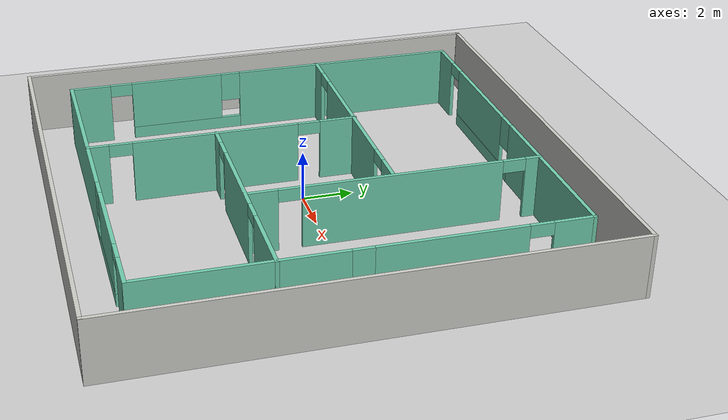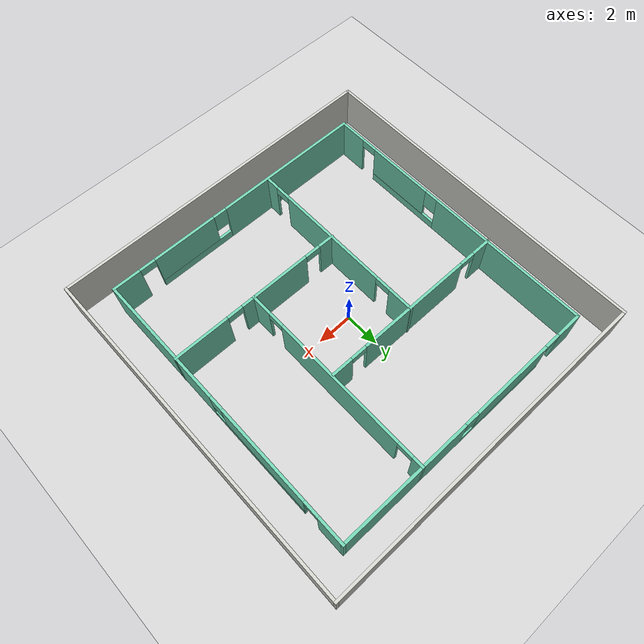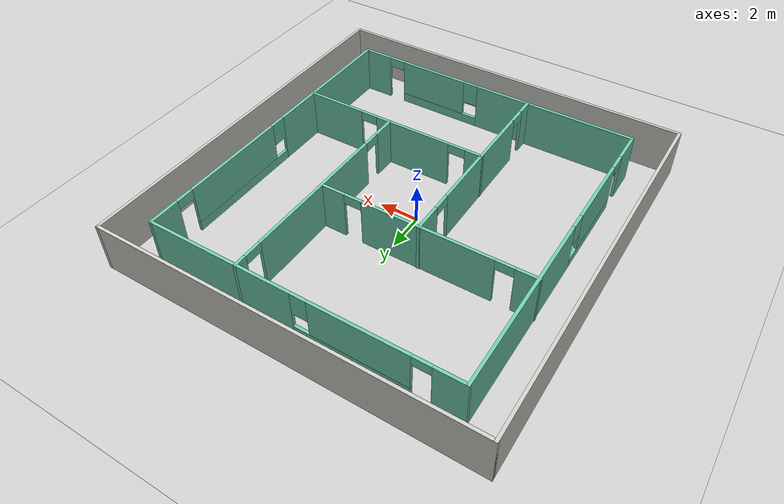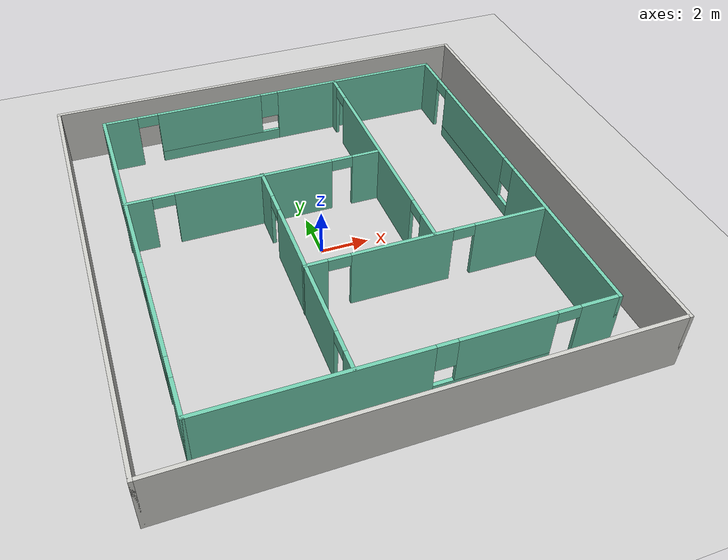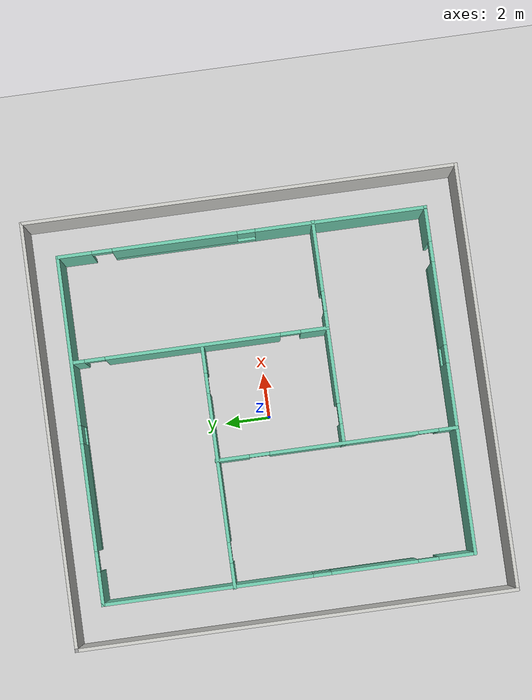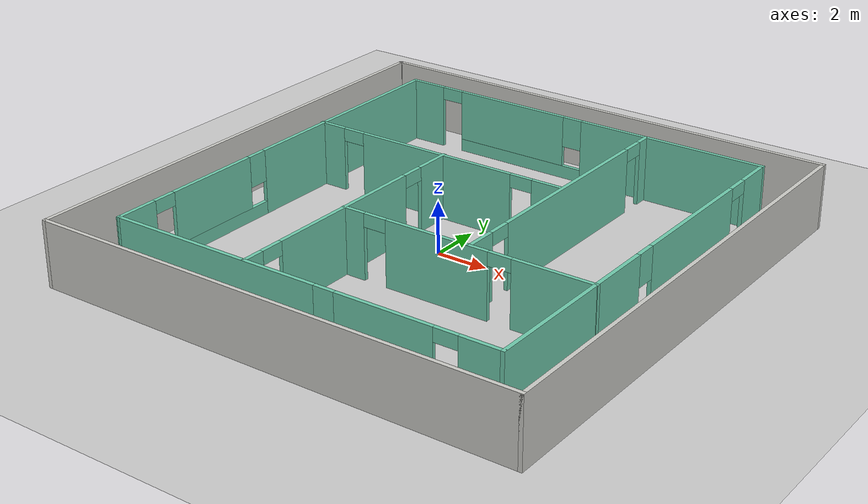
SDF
<sdf version="1.6">
 <world name="default">
  <plugin name="hello" filename="./build/libhello.so"/>
  <light name="sun" type="directional">
   <pose>0 0 10 0 -0 0</pose>
   <diffuse>0.8 0.8 0.8 1</diffuse>
   <specular>0.2 0.2 0.2 1</specular>
   <attenuation>
    <range>1000</range>
    <constant>0.9</constant>
    <linear>0.01</linear>
    <quadratic>0.001</quadratic>
   </attenuation>
   <direction>-0.5 0.1 -0.9</direction>
  </light>
  <model name="ground_plane">
   <static>1</static>
   <link name="link">
    <collision name="collision">
     <geometry><plane><normal>0 0 1</normal><size>100 100</size></plane></geometry>
     <surface>
      <contact><collide_bitmask>65535</collide_bitmask></contact>
      <friction><ode><mu>100</mu><mu2>50</mu2></ode></friction>
     </surface>
    </collision>
    <visual name="visual">
     <cast_shadows>0</cast_shadows>
     <geometry><plane><normal>0 0 1</normal><size>100 100</size></plane></geometry>
     <material>
      <script><uri>file://media/materials/scripts/gazebo.material</uri><name>Gazebo/Grey</name></script>
     </material>
    </visual>
   </link>
  </model>
  <gravity>0 0 -9.8</gravity>
  <magnetic_field>6e-06 2.3e-05 -4.2e-05</magnetic_field>
  <atmosphere type="adiabatic"/>
  <physics name="default_physics" default="0" type="ode">
   <max_step_size>0.001</max_step_size>
   <real_time_factor>1</real_time_factor>
   <real_time_update_rate>1000</real_time_update_rate>
  </physics>
  <scene><ambient>0.4 0.4 0.4 1</ambient><background>0.7 0.7 0.7 1</background><shadows>1</shadows></scene>
  <audio><device>default</device></audio>
  <spherical_coordinates>
   <surface_model>EARTH_WGS84</surface_model>
   <latitude_deg>0</latitude_deg>
   <longitude_deg>0</longitude_deg>
   <elevation>0</elevation>
   <heading_deg>0</heading_deg>
  </spherical_coordinates>
  <model name="Building">
   <pose>0.43599 0.01676 0 0 -0 0</pose>
   <link name="Wall_101">
    <pose>-2.08663 -2.75527 0 0 -0 -1.5708</pose>
    <visual name="Wall_101_Visual_0">
     <pose>-4.61745 0 1.25 0 -0 0</pose>
     <geometry><box><size>1.51509 0.15 2.5</size></box></geometry>
     <material>
      <script><uri>file://media/materials/scripts/gazebo.material</uri><name>Gazebo/Grey</name></script>
      <ambient>0.435294 0.796078 0.67451 1</ambient>
     </material>
     <meta><layer>0</layer></meta>
    </visual>
    <collision name="Wall_101_Collision_0">
     <geometry><box><size>1.51509 0.15 2.5</size></box></geometry>
     <pose>-4.61745 0 1.25 0 -0 0</pose>
    </collision>
    <visual name="Wall_101_Visual_1">
     <pose>0.323003 0 1.25 0 -0 0</pose>
     <geometry><box><size>6.56583 0.15 2.5</size></box></geometry>
     <material>
      <script><uri>file://media/materials/scripts/gazebo.material</uri><name>Gazebo/Grey</name></script>
      <ambient>0.435294 0.796078 0.67451 1</ambient>
     </material>
     <meta><layer>0</layer></meta>
    </visual>
    <collision name="Wall_101_Collision_1">
     <geometry><box><size>6.56583 0.15 2.5</size></box></geometry>
     <pose>0.323003 0 1.25 0 -0 0</pose>
    </collision>
    <visual name="Wall_101_Visual_2">
     <pose>4.94046 0 1.25 0 -0 0</pose>
     <geometry><box><size>0.869084 0.15 2.5</size></box></geometry>
     <material>
      <script><uri>file://media/materials/scripts/gazebo.material</uri><name>Gazebo/Grey</name></script>
      <ambient>0.435294 0.796078 0.67451 1</ambient>
     </material>
     <meta><layer>0</layer></meta>
    </visual>
    <collision name="Wall_101_Collision_2">
     <geometry><box><size>0.869084 0.15 2.5</size></box></geometry>
     <pose>4.94046 0 1.25 0 -0 0</pose>
    </collision>
    <visual name="Wall_101_Visual_3">
     <pose>-3.40991 0 2.25 0 -0 0</pose>
     <geometry><box><size>0.9 0.15 0.5</size></box></geometry>
     <material>
      <script><uri>file://media/materials/scripts/gazebo.material</uri><name>Gazebo/Grey</name></script>
      <ambient>0.435294 0.796078 0.67451 1</ambient>
     </material>
     <meta><layer>0</layer></meta>
    </visual>
    <collision name="Wall_101_Collision_3">
     <geometry><box><size>0.9 0.15 0.5</size></box></geometry>
     <pose>-3.40991 0 2.25 0 -0 0</pose>
    </collision>
    <visual name="Wall_101_Visual_4">
     <pose>4.05592 0 2.25 0 -0 0</pose>
     <geometry><box><size>0.9 0.15 0.5</size></box></geometry>
     <material>
      <script><uri>file://media/materials/scripts/gazebo.material</uri><name>Gazebo/Grey</name></script>
      <ambient>0.435294 0.796078 0.67451 1</ambient>
     </material>
     <meta><layer>0</layer></meta>
    </visual>
    <collision name="Wall_101_Collision_4">
     <geometry><box><size>0.9 0.15 0.5</size></box></geometry>
     <pose>4.05592 0 2.25 0 -0 0</pose>
    </collision>
   </link>
   <link name="Wall_84">
    <collision name="Wall_84_Collision">
     <geometry><box><size>19.5 0.15 2.5</size></box></geometry>
     <pose>0 0 1.25 0 -0 0</pose>
    </collision>
    <visual name="Wall_84_Visual">
     <pose>0 0 1.25 0 -0 0</pose>
     <geometry><box><size>19.5 0.15 2.5</size></box></geometry>
     <material>
      <script><uri>file://media/materials/scripts/gazebo.material</uri><name>Gazebo/CeilingTiled</name></script>
      <ambient>1 1 1 1</ambient>
     </material>
     <meta><layer>0</layer></meta>
    </visual>
    <pose>-9.425 0 0 0 -0 -1.5708</pose>
   </link>
   <link name="Wall_85">
    <collision name="Wall_85_Collision">
     <geometry><box><size>19 0.15 2.5</size></box></geometry>
     <pose>0 0 1.25 0 -0 0</pose>
    </collision>
    <visual name="Wall_85_Visual">
     <pose>0 0 1.25 0 -0 0</pose>
     <geometry><box><size>19 0.15 2.5</size></box></geometry>
     <material>
      <script><uri>file://media/materials/scripts/gazebo.material</uri><name>Gazebo/CeilingTiled</name></script>
      <ambient>1 1 1 1</ambient>
     </material>
     <meta><layer>0</layer></meta>
    </visual>
    <pose>0 -9.675 0 0 -0 0</pose>
   </link>
   <link name="Wall_86">
    <collision name="Wall_86_Collision">
     <geometry><box><size>19.5 0.15 2.5</size></box></geometry>
     <pose>0 0 1.25 0 -0 0</pose>
    </collision>
    <visual name="Wall_86_Visual">
     <pose>0 0 1.25 0 -0 0</pose>
     <geometry><box><size>19.5 0.15 2.5</size></box></geometry>
     <material>
      <script><uri>file://media/materials/scripts/gazebo.material</uri><name>Gazebo/CeilingTiled</name></script>
      <ambient>1 1 1 1</ambient>
     </material>
     <meta><layer>0</layer></meta>
    </visual>
    <pose>9.425 0 0 0 -0 1.5708</pose>
   </link>
   <link name="Wall_87">
    <collision name="Wall_87_Collision">
     <geometry><box><size>19 0.15 2.5</size></box></geometry>
     <pose>0 0 1.25 0 -0 0</pose>
    </collision>
    <visual name="Wall_87_Visual">
     <pose>0 0 1.25 0 -0 0</pose>
     <geometry><box><size>19 0.15 2.5</size></box></geometry>
     <material>
      <script><uri>file://media/materials/scripts/gazebo.material</uri><name>Gazebo/CeilingTiled</name></script>
      <ambient>1 1 1 1</ambient>
     </material>
     <meta><layer>0</layer></meta>
    </visual>
    <pose>0 9.675 0 0 -0 3.14159</pose>
   </link>
   <link name="Wall_88">
    <collision name="Wall_88_Collision">
     <geometry><box><size>0.16 0.15 2.5</size></box></geometry>
     <pose>0 0 1.25 0 -0 0</pose>
    </collision>
    <visual name="Wall_88_Visual">
     <pose>0 0 1.25 0 -0 0</pose>
     <geometry><box><size>0.16 0.15 2.5</size></box></geometry>
     <material>
      <script><uri>file://media/materials/scripts/gazebo.material</uri><name>Gazebo/Grey</name></script>
      <ambient>1 1 1 1</ambient>
     </material>
     <meta><layer>0</layer></meta>
    </visual>
    <pose>-9.42 9.675 0 0 -0 0</pose>
   </link>
   <link name="Wall_90">
    <pose>-7.62558 0.103719 0 0 -0 -1.5708</pose>
    <visual name="Wall_90_Visual_0">
     <pose>-3.59802 0 1.25 0 -0 0</pose>
     <geometry><box><size>9.30396 0.15 2.5</size></box></geometry>
     <material>
      <script><uri>file://media/materials/scripts/gazebo.material</uri><name>Gazebo/Grey</name></script>
      <ambient>0.435294 0.796078 0.67451 1</ambient>
     </material>
     <meta><layer>0</layer></meta>
    </visual>
    <collision name="Wall_90_Collision_0">
     <geometry><box><size>9.30396 0.15 2.5</size></box></geometry>
     <pose>-3.59802 0 1.25 0 -0 0</pose>
    </collision>
    <visual name="Wall_90_Visual_1">
     <pose>7.40961 0 1.25 0 -0 0</pose>
     <geometry><box><size>1.68078 0.15 2.5</size></box></geometry>
     <material>
      <script><uri>file://media/materials/scripts/gazebo.material</uri><name>Gazebo/Grey</name></script>
      <ambient>0.435294 0.796078 0.67451 1</ambient>
     </material>
     <meta><layer>0</layer></meta>
    </visual>
    <collision name="Wall_90_Collision_1">
     <geometry><box><size>1.68078 0.15 2.5</size></box></geometry>
     <pose>7.40961 0 1.25 0 -0 0</pose>
    </collision>
    <visual name="Wall_90_Visual_2">
     <pose>3.36159 0 0.25 0 -0 0</pose>
     <geometry><box><size>4.61526 0.15 0.5</size></box></geometry>
     <material>
      <script><uri>file://media/materials/scripts/gazebo.material</uri><name>Gazebo/Grey</name></script>
      <ambient>0.435294 0.796078 0.67451 1</ambient>
     </material>
     <meta><layer>0</layer></meta>
    </visual>
    <collision name="Wall_90_Collision_2">
     <geometry><box><size>4.61526 0.15 0.5</size></box></geometry>
     <pose>3.36159 0 0.25 0 -0 0</pose>
    </collision>
    <visual name="Wall_90_Visual_3">
     <pose>3.76159 0 1.5 0 -0 0</pose>
     <geometry><box><size>3.81526 0.15 2</size></box></geometry>
     <material>
      <script><uri>file://media/materials/scripts/gazebo.material</uri><name>Gazebo/Grey</name></script>
      <ambient>0.435294 0.796078 0.67451 1</ambient>
     </material>
     <meta><layer>0</layer></meta>
    </visual>
    <collision name="Wall_90_Collision_3">
     <geometry><box><size>3.81526 0.15 2</size></box></geometry>
     <pose>3.76159 0 1.5 0 -0 0</pose>
    </collision>
    <visual name="Wall_90_Visual_4">
     <pose>1.45396 0 1.9 0 -0 0</pose>
     <geometry><box><size>0.8 0.15 1.2</size></box></geometry>
     <material>
      <script><uri>file://media/materials/scripts/gazebo.material</uri><name>Gazebo/Grey</name></script>
      <ambient>0.435294 0.796078 0.67451 1</ambient>
     </material>
     <meta><layer>0</layer></meta>
    </visual>
    <collision name="Wall_90_Collision_4">
     <geometry><box><size>0.8 0.15 1.2</size></box></geometry>
     <pose>1.45396 0 1.9 0 -0 0</pose>
    </collision>
    <visual name="Wall_90_Visual_5">
     <pose>6.11922 0 2.25 0 -0 0</pose>
     <geometry><box><size>0.9 0.15 0.5</size></box></geometry>
     <material>
      <script><uri>file://media/materials/scripts/gazebo.material</uri><name>Gazebo/Grey</name></script>
      <ambient>0.435294 0.796078 0.67451 1</ambient>
     </material>
     <meta><layer>0</layer></meta>
    </visual>
    <collision name="Wall_90_Collision_5">
     <geometry><box><size>0.9 0.15 0.5</size></box></geometry>
     <pose>6.11922 0 2.25 0 -0 0</pose>
    </collision>
   </link>
   <link name="Wall_91">
    <pose>0.049418 -8.07128 0 0 -0 0</pose>
    <visual name="Wall_91_Visual_0">
     <pose>-3.51293 0 1.25 0 -0 0</pose>
     <geometry><box><size>8.47414 0.15 2.5</size></box></geometry>
     <material>
      <script><uri>file://media/materials/scripts/gazebo.material</uri><name>Gazebo/Grey</name></script>
      <ambient>0.435294 0.796078 0.67451 1</ambient>
     </material>
     <meta><layer>0</layer></meta>
    </visual>
    <collision name="Wall_91_Collision_0">
     <geometry><box><size>8.47414 0.15 2.5</size></box></geometry>
     <pose>-3.51293 0 1.25 0 -0 0</pose>
    </collision>
    <visual name="Wall_91_Visual_1">
     <pose>6.94158 0 1.25 0 -0 0</pose>
     <geometry><box><size>1.61685 0.15 2.5</size></box></geometry>
     <material>
      <script><uri>file://media/materials/scripts/gazebo.material</uri><name>Gazebo/Grey</name></script>
      <ambient>0.435294 0.796078 0.67451 1</ambient>
     </material>
     <meta><layer>0</layer></meta>
    </visual>
    <collision name="Wall_91_Collision_1">
     <geometry><box><size>1.61685 0.15 2.5</size></box></geometry>
     <pose>6.94158 0 1.25 0 -0 0</pose>
    </collision>
    <visual name="Wall_91_Visual_2">
     <pose>2.97865 0 0.25 0 -0 0</pose>
     <geometry><box><size>4.50901 0.15 0.5</size></box></geometry>
     <material>
      <script><uri>file://media/materials/scripts/gazebo.material</uri><name>Gazebo/Grey</name></script>
      <ambient>0.435294 0.796078 0.67451 1</ambient>
     </material>
     <meta><layer>0</layer></meta>
    </visual>
    <collision name="Wall_91_Collision_2">
     <geometry><box><size>4.50901 0.15 0.5</size></box></geometry>
     <pose>2.97865 0 0.25 0 -0 0</pose>
    </collision>
    <visual name="Wall_91_Visual_3">
     <pose>3.37865 0 1.5 0 -0 0</pose>
     <geometry><box><size>3.70901 0.15 2</size></box></geometry>
     <material>
      <script><uri>file://media/materials/scripts/gazebo.material</uri><name>Gazebo/Grey</name></script>
      <ambient>0.435294 0.796078 0.67451 1</ambient>
     </material>
     <meta><layer>0</layer></meta>
    </visual>
    <collision name="Wall_91_Collision_3">
     <geometry><box><size>3.70901 0.15 2</size></box></geometry>
     <pose>3.37865 0 1.5 0 -0 0</pose>
    </collision>
    <visual name="Wall_91_Visual_4">
     <pose>1.12414 0 1.9 0 -0 0</pose>
     <geometry><box><size>0.8 0.15 1.2</size></box></geometry>
     <material>
      <script><uri>file://media/materials/scripts/gazebo.material</uri><name>Gazebo/Grey</name></script>
      <ambient>0.435294 0.796078 0.67451 1</ambient>
     </material>
     <meta><layer>0</layer></meta>
    </visual>
    <collision name="Wall_91_Collision_4">
     <geometry><box><size>0.8 0.15 1.2</size></box></geometry>
     <pose>1.12414 0 1.9 0 -0 0</pose>
    </collision>
    <visual name="Wall_91_Visual_5">
     <pose>5.68315 0 2.25 0 -0 0</pose>
     <geometry><box><size>0.9 0.15 0.5</size></box></geometry>
     <material>
      <script><uri>file://media/materials/scripts/gazebo.material</uri><name>Gazebo/Grey</name></script>
      <ambient>0.435294 0.796078 0.67451 1</ambient>
     </material>
     <meta><layer>0</layer></meta>
    </visual>
    <collision name="Wall_91_Collision_5">
     <geometry><box><size>0.9 0.15 0.5</size></box></geometry>
     <pose>5.68315 0 2.25 0 -0 0</pose>
    </collision>
   </link>
   <link name="Wall_92">
    <pose>7.72442 0.103719 0 0 -0 1.5708</pose>
    <visual name="Wall_92_Visual_0">
     <pose>-4.42448 0 1.25 0 -0 0</pose>
     <geometry><box><size>7.65104 0.15 2.5</size></box></geometry>
     <material>
      <script><uri>file://media/materials/scripts/gazebo.material</uri><name>Gazebo/Grey</name></script>
      <ambient>0.435294 0.796078 0.67451 1</ambient>
     </material>
     <meta><layer>0</layer></meta>
    </visual>
    <collision name="Wall_92_Collision_0">
     <geometry><box><size>7.65104 0.15 2.5</size></box></geometry>
     <pose>-4.42448 0 1.25 0 -0 0</pose>
    </collision>
    <visual name="Wall_92_Visual_1">
     <pose>7.45345 0 1.25 0 -0 0</pose>
     <geometry><box><size>1.5931 0.15 2.5</size></box></geometry>
     <material>
      <script><uri>file://media/materials/scripts/gazebo.material</uri><name>Gazebo/Grey</name></script>
      <ambient>0.435294 0.796078 0.67451 1</ambient>
     </material>
     <meta><layer>0</layer></meta>
    </visual>
    <collision name="Wall_92_Collision_1">
     <geometry><box><size>1.5931 0.15 2.5</size></box></geometry>
     <pose>7.45345 0 1.25 0 -0 0</pose>
    </collision>
    <visual name="Wall_92_Visual_2">
     <pose>2.57897 0 0.25 0 -0 0</pose>
     <geometry><box><size>6.35586 0.15 0.5</size></box></geometry>
     <material>
      <script><uri>file://media/materials/scripts/gazebo.material</uri><name>Gazebo/Grey</name></script>
      <ambient>0.435294 0.796078 0.67451 1</ambient>
     </material>
     <meta><layer>0</layer></meta>
    </visual>
    <collision name="Wall_92_Collision_2">
     <geometry><box><size>6.35586 0.15 0.5</size></box></geometry>
     <pose>2.57897 0 0.25 0 -0 0</pose>
    </collision>
    <visual name="Wall_92_Visual_3">
     <pose>2.97897 0 1.5 0 -0 0</pose>
     <geometry><box><size>5.55586 0.15 2</size></box></geometry>
     <material>
      <script><uri>file://media/materials/scripts/gazebo.material</uri><name>Gazebo/Grey</name></script>
      <ambient>0.435294 0.796078 0.67451 1</ambient>
     </material>
     <meta><layer>0</layer></meta>
    </visual>
    <collision name="Wall_92_Collision_3">
     <geometry><box><size>5.55586 0.15 2</size></box></geometry>
     <pose>2.97897 0 1.5 0 -0 0</pose>
    </collision>
    <visual name="Wall_92_Visual_4">
     <pose>-0.198964 0 1.9 0 -0 0</pose>
     <geometry><box><size>0.8 0.15 1.2</size></box></geometry>
     <material>
      <script><uri>file://media/materials/scripts/gazebo.material</uri><name>Gazebo/Grey</name></script>
      <ambient>0.435294 0.796078 0.67451 1</ambient>
     </material>
     <meta><layer>0</layer></meta>
    </visual>
    <collision name="Wall_92_Collision_4">
     <geometry><box><size>0.8 0.15 1.2</size></box></geometry>
     <pose>-0.198964 0 1.9 0 -0 0</pose>
    </collision>
    <visual name="Wall_92_Visual_5">
     <pose>6.2069 0 2.25 0 -0 0</pose>
     <geometry><box><size>0.9 0.15 0.5</size></box></geometry>
     <material>
      <script><uri>file://media/materials/scripts/gazebo.material</uri><name>Gazebo/Grey</name></script>
      <ambient>0.435294 0.796078 0.67451 1</ambient>
     </material>
     <meta><layer>0</layer></meta>
    </visual>
    <collision name="Wall_92_Collision_5">
     <geometry><box><size>0.9 0.15 0.5</size></box></geometry>
     <pose>6.2069 0 2.25 0 -0 0</pose>
    </collision>
   </link>
   <link name="Wall_93">
    <pose>0.049418 8.27872 0 0 -0 3.14159</pose>
    <visual name="Wall_93_Visual_0">
     <pose>-3.97565 0 1.25 0 -0 0</pose>
     <geometry><box><size>7.5487 0.15 2.5</size></box></geometry>
     <material>
      <script><uri>file://media/materials/scripts/gazebo.material</uri><name>Gazebo/Grey</name></script>
      <ambient>0.435294 0.796078 0.67451 1</ambient>
     </material>
     <meta><layer>0</layer></meta>
    </visual>
    <collision name="Wall_93_Collision_0">
     <geometry><box><size>7.5487 0.15 2.5</size></box></geometry>
     <pose>-3.97565 0 1.25 0 -0 0</pose>
    </collision>
    <visual name="Wall_93_Visual_1">
     <pose>6.99241 0 1.25 0 -0 0</pose>
     <geometry><box><size>1.51518 0.15 2.5</size></box></geometry>
     <material>
      <script><uri>file://media/materials/scripts/gazebo.material</uri><name>Gazebo/Grey</name></script>
      <ambient>0.435294 0.796078 0.67451 1</ambient>
     </material>
     <meta><layer>0</layer></meta>
    </visual>
    <collision name="Wall_93_Collision_1">
     <geometry><box><size>1.51518 0.15 2.5</size></box></geometry>
     <pose>6.99241 0 1.25 0 -0 0</pose>
    </collision>
    <visual name="Wall_93_Visual_2">
     <pose>2.56676 0 0.25 0 -0 0</pose>
     <geometry><box><size>5.53612 0.15 0.5</size></box></geometry>
     <material>
      <script><uri>file://media/materials/scripts/gazebo.material</uri><name>Gazebo/Grey</name></script>
      <ambient>0.435294 0.796078 0.67451 1</ambient>
     </material>
     <meta><layer>0</layer></meta>
    </visual>
    <collision name="Wall_93_Collision_2">
     <geometry><box><size>5.53612 0.15 0.5</size></box></geometry>
     <pose>2.56676 0 0.25 0 -0 0</pose>
    </collision>
    <visual name="Wall_93_Visual_3">
     <pose>2.96676 0 1.5 0 -0 0</pose>
     <geometry><box><size>4.73612 0.15 2</size></box></geometry>
     <material>
      <script><uri>file://media/materials/scripts/gazebo.material</uri><name>Gazebo/Grey</name></script>
      <ambient>0.435294 0.796078 0.67451 1</ambient>
     </material>
     <meta><layer>0</layer></meta>
    </visual>
    <collision name="Wall_93_Collision_3">
     <geometry><box><size>4.73612 0.15 2</size></box></geometry>
     <pose>2.96676 0 1.5 0 -0 0</pose>
    </collision>
    <visual name="Wall_93_Visual_4">
     <pose>0.198698 0 1.9 0 -0 0</pose>
     <geometry><box><size>0.8 0.15 1.2</size></box></geometry>
     <material>
      <script><uri>file://media/materials/scripts/gazebo.material</uri><name>Gazebo/Grey</name></script>
      <ambient>0.435294 0.796078 0.67451 1</ambient>
     </material>
     <meta><layer>0</layer></meta>
    </visual>
    <collision name="Wall_93_Collision_4">
     <geometry><box><size>0.8 0.15 1.2</size></box></geometry>
     <pose>0.198698 0 1.9 0 -0 0</pose>
    </collision>
    <visual name="Wall_93_Visual_5">
     <pose>5.78482 0 2.25 0 -0 0</pose>
     <geometry><box><size>0.9 0.15 0.5</size></box></geometry>
     <material>
      <script><uri>file://media/materials/scripts/gazebo.material</uri><name>Gazebo/Grey</name></script>
      <ambient>0.435294 0.796078 0.67451 1</ambient>
     </material>
     <meta><layer>0</layer></meta>
    </visual>
    <collision name="Wall_93_Collision_5">
     <geometry><box><size>0.9 0.15 0.5</size></box></geometry>
     <pose>5.78482 0 2.25 0 -0 0</pose>
    </collision>
   </link>
   <link name="Wall_95">
    <pose>-2.36459 2.50573 0 0 -0 0</pose>
    <visual name="Wall_95_Visual_0">
     <pose>-4.80187 0 1.25 0 -0 0</pose>
     <geometry><box><size>1.14626 0.15 2.5</size></box></geometry>
     <material>
      <script><uri>file://media/materials/scripts/gazebo.material</uri><name>Gazebo/Grey</name></script>
      <ambient>0.435294 0.796078 0.67451 1</ambient>
     </material>
     <meta><layer>0</layer></meta>
    </visual>
    <collision name="Wall_95_Collision_0">
     <geometry><box><size>1.14626 0.15 2.5</size></box></geometry>
     <pose>-4.80187 0 1.25 0 -0 0</pose>
    </collision>
    <visual name="Wall_95_Visual_1">
     <pose>-0.044669 0 1.25 0 -0 0</pose>
     <geometry><box><size>6.56814 0.15 2.5</size></box></geometry>
     <material>
      <script><uri>file://media/materials/scripts/gazebo.material</uri><name>Gazebo/Grey</name></script>
      <ambient>0.435294 0.796078 0.67451 1</ambient>
     </material>
     <meta><layer>0</layer></meta>
    </visual>
    <collision name="Wall_95_Collision_1">
     <geometry><box><size>6.56814 0.15 2.5</size></box></geometry>
     <pose>-0.044669 0 1.25 0 -0 0</pose>
    </collision>
    <visual name="Wall_95_Visual_2">
     <pose>4.7572 0 1.25 0 -0 0</pose>
     <geometry><box><size>1.2356 0.15 2.5</size></box></geometry>
     <material>
      <script><uri>file://media/materials/scripts/gazebo.material</uri><name>Gazebo/Grey</name></script>
      <ambient>0.435294 0.796078 0.67451 1</ambient>
     </material>
     <meta><layer>0</layer></meta>
    </visual>
    <collision name="Wall_95_Collision_2">
     <geometry><box><size>1.2356 0.15 2.5</size></box></geometry>
     <pose>4.7572 0 1.25 0 -0 0</pose>
    </collision>
    <visual name="Wall_95_Visual_3">
     <pose>-3.77874 0 2.25 0 -0 0</pose>
     <geometry><box><size>0.9 0.15 0.5</size></box></geometry>
     <material>
      <script><uri>file://media/materials/scripts/gazebo.material</uri><name>Gazebo/Grey</name></script>
      <ambient>0.435294 0.796078 0.67451 1</ambient>
     </material>
     <meta><layer>0</layer></meta>
    </visual>
    <collision name="Wall_95_Collision_3">
     <geometry><box><size>0.9 0.15 0.5</size></box></geometry>
     <pose>-3.77874 0 2.25 0 -0 0</pose>
    </collision>
    <visual name="Wall_95_Visual_4">
     <pose>3.6894 0 2.25 0 -0 0</pose>
     <geometry><box><size>0.9 0.15 0.5</size></box></geometry>
     <material>
      <script><uri>file://media/materials/scripts/gazebo.material</uri><name>Gazebo/Grey</name></script>
      <ambient>0.435294 0.796078 0.67451 1</ambient>
     </material>
     <meta><layer>0</layer></meta>
    </visual>
    <collision name="Wall_95_Collision_4">
     <geometry><box><size>0.9 0.15 0.5</size></box></geometry>
     <pose>3.6894 0 2.25 0 -0 0</pose>
    </collision>
   </link>
   <link name="Wall_97">
    <pose>3.02325 2.60372 0 0 -0 -1.5708</pose>
    <visual name="Wall_97_Visual_0">
     <pose>-5.42153 0 1.25 0 -0 0</pose>
     <geometry><box><size>0.656941 0.15 2.5</size></box></geometry>
     <material>
      <script><uri>file://media/materials/scripts/gazebo.material</uri><name>Gazebo/Grey</name></script>
      <ambient>0.435294 0.796078 0.67451 1</ambient>
     </material>
     <meta><layer>0</layer></meta>
    </visual>
    <collision name="Wall_97_Collision_0">
     <geometry><box><size>0.656941 0.15 2.5</size></box></geometry>
     <pose>-5.42153 0 1.25 0 -0 0</pose>
    </collision>
    <visual name="Wall_97_Visual_1">
     <pose>-0.309795 0 1.25 0 -0 0</pose>
     <geometry><box><size>7.76653 0.15 2.5</size></box></geometry>
     <material>
      <script><uri>file://media/materials/scripts/gazebo.material</uri><name>Gazebo/Grey</name></script>
      <ambient>0.435294 0.796078 0.67451 1</ambient>
     </material>
     <meta><layer>0</layer></meta>
    </visual>
    <collision name="Wall_97_Collision_1">
     <geometry><box><size>7.76653 0.15 2.5</size></box></geometry>
     <pose>-0.309795 0 1.25 0 -0 0</pose>
    </collision>
    <visual name="Wall_97_Visual_2">
     <pose>5.11174 0 1.25 0 -0 0</pose>
     <geometry><box><size>1.27653 0.15 2.5</size></box></geometry>
     <material>
      <script><uri>file://media/materials/scripts/gazebo.material</uri><name>Gazebo/Grey</name></script>
      <ambient>0.435294 0.796078 0.67451 1</ambient>
     </material>
     <meta><layer>0</layer></meta>
    </visual>
    <collision name="Wall_97_Collision_2">
     <geometry><box><size>1.27653 0.15 2.5</size></box></geometry>
     <pose>5.11174 0 1.25 0 -0 0</pose>
    </collision>
    <visual name="Wall_97_Visual_3">
     <pose>-4.64306 0 2.25 0 -0 0</pose>
     <geometry><box><size>0.9 0.15 0.5</size></box></geometry>
     <material>
      <script><uri>file://media/materials/scripts/gazebo.material</uri><name>Gazebo/Grey</name></script>
      <ambient>0.435294 0.796078 0.67451 1</ambient>
     </material>
     <meta><layer>0</layer></meta>
    </visual>
    <collision name="Wall_97_Collision_3">
     <geometry><box><size>0.9 0.15 0.5</size></box></geometry>
     <pose>-4.64306 0 2.25 0 -0 0</pose>
    </collision>
    <visual name="Wall_97_Visual_4">
     <pose>4.02347 0 2.25 0 -0 0</pose>
     <geometry><box><size>0.9 0.15 0.5</size></box></geometry>
     <material>
      <script><uri>file://media/materials/scripts/gazebo.material</uri><name>Gazebo/Grey</name></script>
      <ambient>0.435294 0.796078 0.67451 1</ambient>
     </material>
     <meta><layer>0</layer></meta>
    </visual>
    <collision name="Wall_97_Collision_4">
     <geometry><box><size>0.9 0.15 0.5</size></box></geometry>
     <pose>4.02347 0 2.25 0 -0 0</pose>
    </collision>
   </link>
   <link name="Wall_99">
    <pose>2.81806 -3.07223 0 0 -0 3.14159</pose>
    <visual name="Wall_99_Visual_0">
     <pose>-3.42162 0 1.25 0 -0 0</pose>
     <geometry><box><size>3.15675 0.15 2.5</size></box></geometry>
     <material>
      <script><uri>file://media/materials/scripts/gazebo.material</uri><name>Gazebo/Grey</name></script>
      <ambient>0.435294 0.796078 0.67451 1</ambient>
     </material>
     <meta><layer>0</layer></meta>
    </visual>
    <collision name="Wall_99_Collision_0">
     <geometry><box><size>3.15675 0.15 2.5</size></box></geometry>
     <pose>-3.42162 0 1.25 0 -0 0</pose>
    </collision>
    <visual name="Wall_99_Visual_1">
     <pose>1.10318 0 1.25 0 -0 0</pose>
     <geometry><box><size>4.09286 0.15 2.5</size></box></geometry>
     <material>
      <script><uri>file://media/materials/scripts/gazebo.material</uri><name>Gazebo/Grey</name></script>
      <ambient>0.435294 0.796078 0.67451 1</ambient>
     </material>
     <meta><layer>0</layer></meta>
    </visual>
    <collision name="Wall_99_Collision_1">
     <geometry><box><size>4.09286 0.15 2.5</size></box></geometry>
     <pose>1.10318 0 1.25 0 -0 0</pose>
    </collision>
    <visual name="Wall_99_Visual_2">
     <pose>4.52481 0 1.25 0 -0 0</pose>
     <geometry><box><size>0.950387 0.15 2.5</size></box></geometry>
     <material>
      <script><uri>file://media/materials/scripts/gazebo.material</uri><name>Gazebo/Grey</name></script>
      <ambient>0.435294 0.796078 0.67451 1</ambient>
     </material>
     <meta><layer>0</layer></meta>
    </visual>
    <collision name="Wall_99_Collision_2">
     <geometry><box><size>0.950387 0.15 2.5</size></box></geometry>
     <pose>4.52481 0 1.25 0 -0 0</pose>
    </collision>
    <visual name="Wall_99_Visual_3">
     <pose>-1.39325 0 2.25 0 -0 0</pose>
     <geometry><box><size>0.9 0.15 0.5</size></box></geometry>
     <material>
      <script><uri>file://media/materials/scripts/gazebo.material</uri><name>Gazebo/Grey</name></script>
      <ambient>0.435294 0.796078 0.67451 1</ambient>
     </material>
     <meta><layer>0</layer></meta>
    </visual>
    <collision name="Wall_99_Collision_3">
     <geometry><box><size>0.9 0.15 0.5</size></box></geometry>
     <pose>-1.39325 0 2.25 0 -0 0</pose>
    </collision>
    <visual name="Wall_99_Visual_4">
     <pose>3.59961 0 2.25 0 -0 0</pose>
     <geometry><box><size>0.9 0.15 0.5</size></box></geometry>
     <material>
      <script><uri>file://media/materials/scripts/gazebo.material</uri><name>Gazebo/Grey</name></script>
      <ambient>0.435294 0.796078 0.67451 1</ambient>
     </material>
     <meta><layer>0</layer></meta>
    </visual>
    <collision name="Wall_99_Collision_4">
     <geometry><box><size>0.9 0.15 0.5</size></box></geometry>
     <pose>3.59961 0 2.25 0 -0 0</pose>
    </collision>
   </link>
   <static>1</static>
  </model>
  <plugin name="collision_map_creator" filename="libcollision_map_creator.so"/>
 </world>
</sdf>
